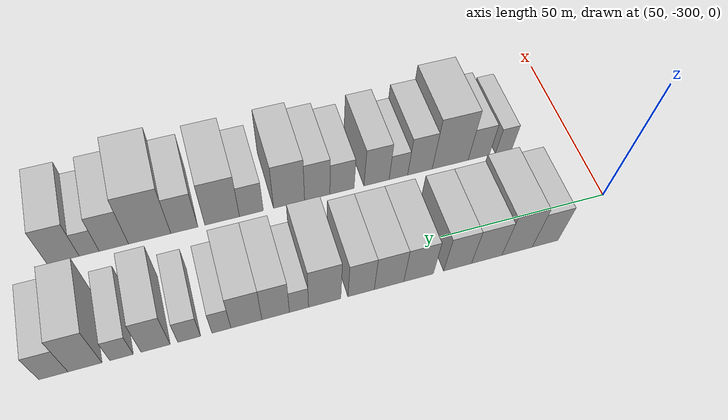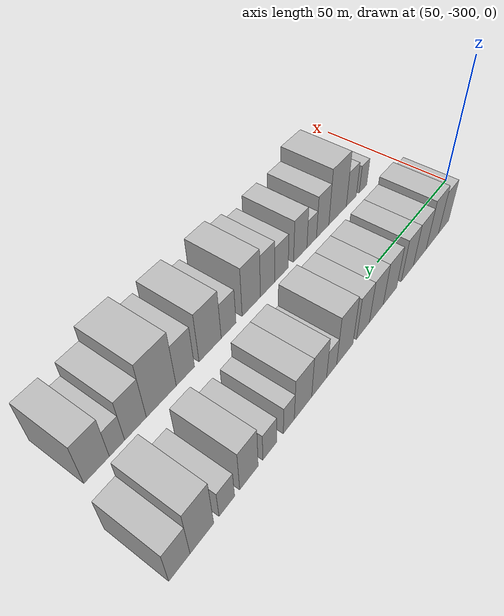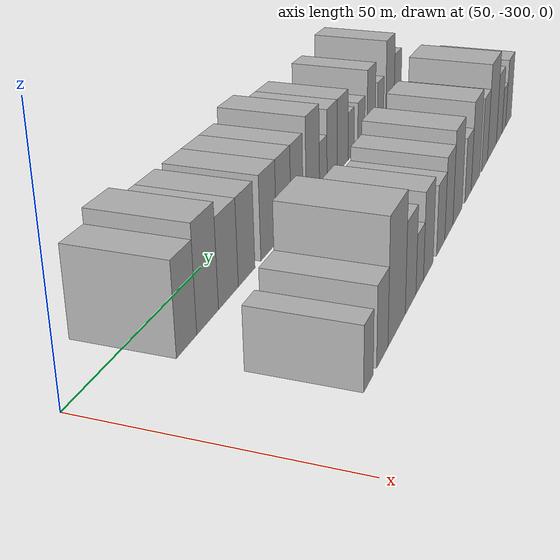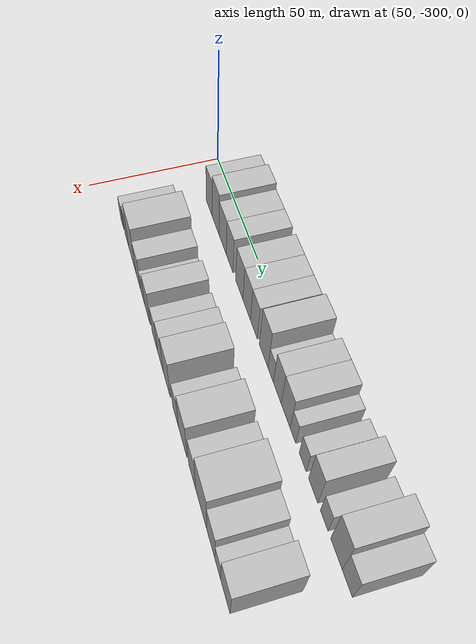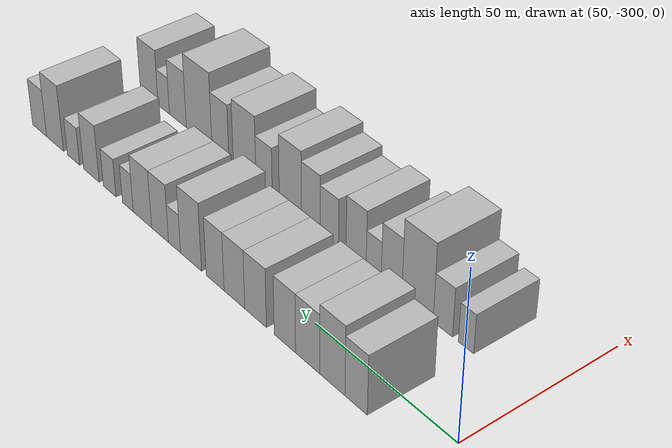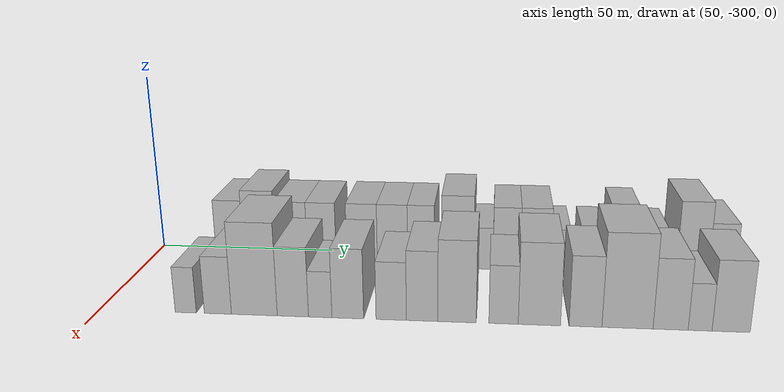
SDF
<sdf version="1.6">
 <world name="default">
  <model name="building_1">
   <static>1</static>
   <pose>50.0000 -277.0836 0 0.000000 0.000000 0.000000</pose>
   <link name="link">
    <pose>0 0 9.00 0 0 0</pose>
    <collision name="collision"><geometry><box><size>20.0000 7.8328 18.0000</size></box></geometry></collision>
    <visual name="visual">
     <cast_shadows>0</cast_shadows>
     <geometry><box><size>20.0000 7.8328 18.0000</size></box></geometry>
     <material>
      <script>
       <uri>model://HANNAS_wall/materials/scripts</uri>
       <uri>model://HANNAS_wall/materials/textures</uri>
       <name>vrc/HANNAS_wall</name>
      </script>
     </material>
    </visual>
   </link>
  </model>
  <model name="building_2">
   <static>1</static>
   <pose>50.0000 -268.6406 0 0.000000 0.000000 0.000000</pose>
   <link name="link">
    <pose>0 0 10.50 0 0 0</pose>
    <collision name="collision"><geometry><box><size>20.0000 9.0533 21.0000</size></box></geometry></collision>
    <visual name="visual">
     <cast_shadows>0</cast_shadows>
     <geometry><box><size>20.0000 9.0533 21.0000</size></box></geometry>
     <material>
      <script>
       <uri>model://HANNAS_wall/materials/scripts</uri>
       <uri>model://HANNAS_wall/materials/textures</uri>
       <name>vrc/HANNAS_wall</name>
      </script>
     </material>
    </visual>
   </link>
  </model>
  <model name="building_3">
   <static>1</static>
   <pose>50.0000 -259.6193 0 0.000000 0.000000 0.000000</pose>
   <link name="link">
    <pose>0 0 9.00 0 0 0</pose>
    <collision name="collision"><geometry><box><size>20.0000 8.9893 18.0000</size></box></geometry></collision>
    <visual name="visual">
     <cast_shadows>0</cast_shadows>
     <geometry><box><size>20.0000 8.9893 18.0000</size></box></geometry>
     <material>
      <script>
       <uri>model://HANNAS_wall/materials/scripts</uri>
       <uri>model://HANNAS_wall/materials/textures</uri>
       <name>vrc/HANNAS_wall</name>
      </script>
     </material>
    </visual>
   </link>
  </model>
  <model name="building_4">
   <static>1</static>
   <pose>50.0000 -251.0663 0 0.000000 0.000000 0.000000</pose>
   <link name="link">
    <pose>0 0 9.00 0 0 0</pose>
    <collision name="collision"><geometry><box><size>20.0000 8.1167 18.0000</size></box></geometry></collision>
    <visual name="visual">
     <cast_shadows>0</cast_shadows>
     <geometry><box><size>20.0000 8.1167 18.0000</size></box></geometry>
     <material>
      <script>
       <uri>model://HANNAS_wall/materials/scripts</uri>
       <uri>model://HANNAS_wall/materials/textures</uri>
       <name>vrc/HANNAS_wall</name>
      </script>
     </material>
    </visual>
   </link>
  </model>
  <model name="building_5">
   <static>1</static>
   <pose>50.0000 -239.7565 0 0.000000 0.000000 0.000000</pose>
   <link name="link">
    <pose>0 0 9.00 0 0 0</pose>
    <collision name="collision"><geometry><box><size>20.0000 8.5028 18.0000</size></box></geometry></collision>
    <visual name="visual">
     <cast_shadows>0</cast_shadows>
     <geometry><box><size>20.0000 8.5028 18.0000</size></box></geometry>
     <material>
      <script>
       <uri>model://HANNAS_wall/materials/scripts</uri>
       <uri>model://HANNAS_wall/materials/textures</uri>
       <name>vrc/HANNAS_wall</name>
      </script>
     </material>
    </visual>
   </link>
  </model>
  <model name="building_6">
   <static>1</static>
   <pose>50.0000 -231.3192 0 0.000000 0.000000 0.000000</pose>
   <link name="link">
    <pose>0 0 9.00 0 0 0</pose>
    <collision name="collision"><geometry><box><size>20.0000 8.3718 18.0000</size></box></geometry></collision>
    <visual name="visual">
     <cast_shadows>0</cast_shadows>
     <geometry><box><size>20.0000 8.3718 18.0000</size></box></geometry>
     <material>
      <script>
       <uri>model://HANNAS_wall/materials/scripts</uri>
       <uri>model://HANNAS_wall/materials/textures</uri>
       <name>vrc/HANNAS_wall</name>
      </script>
     </material>
    </visual>
   </link>
  </model>
  <model name="building_7">
   <static>1</static>
   <pose>50.0000 -223.4350 0 0.000000 0.000000 0.000000</pose>
   <link name="link">
    <pose>0 0 9.00 0 0 0</pose>
    <collision name="collision"><geometry><box><size>20.0000 7.3966 18.0000</size></box></geometry></collision>
    <visual name="visual">
     <cast_shadows>0</cast_shadows>
     <geometry><box><size>20.0000 7.3966 18.0000</size></box></geometry>
     <material>
      <script>
       <uri>model://HANNAS_wall/materials/scripts</uri>
       <uri>model://HANNAS_wall/materials/textures</uri>
       <name>vrc/HANNAS_wall</name>
      </script>
     </material>
    </visual>
   </link>
  </model>
  <model name="building_8">
   <static>1</static>
   <pose>50.0000 -213.2876 0 0.000000 0.000000 0.000000</pose>
   <link name="link">
    <pose>0 0 10.50 0 0 0</pose>
    <collision name="collision"><geometry><box><size>20.0000 8.8982 21.0000</size></box></geometry></collision>
    <visual name="visual">
     <cast_shadows>0</cast_shadows>
     <geometry><box><size>20.0000 8.8982 21.0000</size></box></geometry>
     <material>
      <script>
       <uri>model://HANNAS_wall/materials/scripts</uri>
       <uri>model://HANNAS_wall/materials/textures</uri>
       <name>vrc/HANNAS_wall</name>
      </script>
     </material>
    </visual>
   </link>
  </model>
  <model name="building_9">
   <static>1</static>
   <pose>50.0000 -206.2193 0 0.000000 0.000000 0.000000</pose>
   <link name="link">
    <pose>0 0 6.00 0 0 0</pose>
    <collision name="collision"><geometry><box><size>20.0000 5.2385 12.0000</size></box></geometry></collision>
    <visual name="visual">
     <cast_shadows>0</cast_shadows>
     <geometry><box><size>20.0000 5.2385 12.0000</size></box></geometry>
     <material>
      <script>
       <uri>model://HANNAS_wall/materials/scripts</uri>
       <uri>model://HANNAS_wall/materials/textures</uri>
       <name>vrc/HANNAS_wall</name>
      </script>
     </material>
    </visual>
   </link>
  </model>
  <model name="building_10">
   <static>1</static>
   <pose>50.0000 -199.8635 0 0.000000 0.000000 0.000000</pose>
   <link name="link">
    <pose>0 0 9.00 0 0 0</pose>
    <collision name="collision"><geometry><box><size>20.0000 7.4730 18.0000</size></box></geometry></collision>
    <visual name="visual">
     <cast_shadows>0</cast_shadows>
     <geometry><box><size>20.0000 7.4730 18.0000</size></box></geometry>
     <material>
      <script>
       <uri>model://HANNAS_wall/materials/scripts</uri>
       <uri>model://HANNAS_wall/materials/textures</uri>
       <name>vrc/HANNAS_wall</name>
      </script>
     </material>
    </visual>
   </link>
  </model>
  <model name="building_11">
   <static>1</static>
   <pose>50.0000 -191.9743 0 0.000000 0.000000 0.000000</pose>
   <link name="link">
    <pose>0 0 9.00 0 0 0</pose>
    <collision name="collision"><geometry><box><size>20.0000 8.3054 18.0000</size></box></geometry></collision>
    <visual name="visual">
     <cast_shadows>0</cast_shadows>
     <geometry><box><size>20.0000 8.3054 18.0000</size></box></geometry>
     <material>
      <script>
       <uri>model://HANNAS_wall/materials/scripts</uri>
       <uri>model://HANNAS_wall/materials/textures</uri>
       <name>vrc/HANNAS_wall</name>
      </script>
     </material>
    </visual>
   </link>
  </model>
  <model name="building_12">
   <static>1</static>
   <pose>50.0000 -185.3072 0 0.000000 0.000000 0.000000</pose>
   <link name="link">
    <pose>0 0 6.00 0 0 0</pose>
    <collision name="collision"><geometry><box><size>20.0000 5.0287 12.0000</size></box></geometry></collision>
    <visual name="visual">
     <cast_shadows>0</cast_shadows>
     <geometry><box><size>20.0000 5.0287 12.0000</size></box></geometry>
     <material>
      <script>
       <uri>model://HANNAS_wall/materials/scripts</uri>
       <uri>model://HANNAS_wall/materials/textures</uri>
       <name>vrc/HANNAS_wall</name>
      </script>
     </material>
    </visual>
   </link>
  </model>
  <model name="building_13">
   <static>1</static>
   <pose>50.0000 -176.8049 0 0.000000 0.000000 0.000000</pose>
   <link name="link">
    <pose>0 0 6.00 0 0 0</pose>
    <collision name="collision"><geometry><box><size>20.0000 5.9760 12.0000</size></box></geometry></collision>
    <visual name="visual">
     <cast_shadows>0</cast_shadows>
     <geometry><box><size>20.0000 5.9760 12.0000</size></box></geometry>
     <material>
      <script>
       <uri>model://HANNAS_wall/materials/scripts</uri>
       <uri>model://HANNAS_wall/materials/textures</uri>
       <name>vrc/HANNAS_wall</name>
      </script>
     </material>
    </visual>
   </link>
  </model>
  <model name="building_14">
   <static>1</static>
   <pose>50.0000 -168.0518 0 0.000000 0.000000 0.000000</pose>
   <link name="link">
    <pose>0 0 9.00 0 0 0</pose>
    <collision name="collision"><geometry><box><size>20.0000 7.5302 18.0000</size></box></geometry></collision>
    <visual name="visual">
     <cast_shadows>0</cast_shadows>
     <geometry><box><size>20.0000 7.5302 18.0000</size></box></geometry>
     <material>
      <script>
       <uri>model://HANNAS_wall/materials/scripts</uri>
       <uri>model://HANNAS_wall/materials/textures</uri>
       <name>vrc/HANNAS_wall</name>
      </script>
     </material>
    </visual>
   </link>
  </model>
  <model name="building_15">
   <static>1</static>
   <pose>50.0000 -159.2871 0 0.000000 0.000000 0.000000</pose>
   <link name="link">
    <pose>0 0 6.00 0 0 0</pose>
    <collision name="collision"><geometry><box><size>20.0000 5.9992 12.0000</size></box></geometry></collision>
    <visual name="visual">
     <cast_shadows>0</cast_shadows>
     <geometry><box><size>20.0000 5.9992 12.0000</size></box></geometry>
     <material>
      <script>
       <uri>model://HANNAS_wall/materials/scripts</uri>
       <uri>model://HANNAS_wall/materials/textures</uri>
       <name>vrc/HANNAS_wall</name>
      </script>
     </material>
    </visual>
   </link>
  </model>
  <model name="building_16">
   <static>1</static>
   <pose>50.0000 -150.0109 0 0.000000 0.000000 0.000000</pose>
   <link name="link">
    <pose>0 0 10.50 0 0 0</pose>
    <collision name="collision"><geometry><box><size>20.0000 8.5532 21.0000</size></box></geometry></collision>
    <visual name="visual">
     <cast_shadows>0</cast_shadows>
     <geometry><box><size>20.0000 8.5532 21.0000</size></box></geometry>
     <material>
      <script>
       <uri>model://HANNAS_wall/materials/scripts</uri>
       <uri>model://HANNAS_wall/materials/textures</uri>
       <name>vrc/HANNAS_wall</name>
      </script>
     </material>
    </visual>
   </link>
  </model>
  <model name="building_17">
   <static>1</static>
   <pose>50.0000 -142.0953 0 0.000000 0.000000 0.000000</pose>
   <link name="link">
    <pose>0 0 7.50 0 0 0</pose>
    <collision name="collision"><geometry><box><size>20.0000 7.2780 15.0000</size></box></geometry></collision>
    <visual name="visual">
     <cast_shadows>0</cast_shadows>
     <geometry><box><size>20.0000 7.2780 15.0000</size></box></geometry>
     <material>
      <script>
       <uri>model://HANNAS_wall/materials/scripts</uri>
       <uri>model://HANNAS_wall/materials/textures</uri>
       <name>vrc/HANNAS_wall</name>
      </script>
     </material>
    </visual>
   </link>
  </model>
  <model name="building_67">
   <static>1</static>
   <pose>82.0000 -278.3570 0 0.000000 0.000000 0.000000</pose>
   <link name="link">
    <pose>0 0 6.00 0 0 0</pose>
    <collision name="collision"><geometry><box><size>20.0000 5.2861 12.0000</size></box></geometry></collision>
    <visual name="visual">
     <cast_shadows>0</cast_shadows>
     <geometry><box><size>20.0000 5.2861 12.0000</size></box></geometry>
     <material>
      <script>
       <uri>model://HANNAS_wall/materials/scripts</uri>
       <uri>model://HANNAS_wall/materials/textures</uri>
       <name>vrc/HANNAS_wall</name>
      </script>
     </material>
    </visual>
   </link>
  </model>
  <model name="building_68">
   <static>1</static>
   <pose>82.0000 -270.3275 0 0.000000 0.000000 0.000000</pose>
   <link name="link">
    <pose>0 0 7.50 0 0 0</pose>
    <collision name="collision"><geometry><box><size>20.0000 6.7728 15.0000</size></box></geometry></collision>
    <visual name="visual">
     <cast_shadows>0</cast_shadows>
     <geometry><box><size>20.0000 6.7728 15.0000</size></box></geometry>
     <material>
      <script>
       <uri>model://HANNAS_wall/materials/scripts</uri>
       <uri>model://HANNAS_wall/materials/textures</uri>
       <name>vrc/HANNAS_wall</name>
      </script>
     </material>
    </visual>
   </link>
  </model>
  <model name="building_69">
   <static>1</static>
   <pose>82.0000 -261.2630 0 0.000000 0.000000 0.000000</pose>
   <link name="link">
    <pose>0 0 12.00 0 0 0</pose>
    <collision name="collision"><geometry><box><size>20.0000 11.3561 24.0000</size></box></geometry></collision>
    <visual name="visual">
     <cast_shadows>0</cast_shadows>
     <geometry><box><size>20.0000 11.3561 24.0000</size></box></geometry>
     <material>
      <script>
       <uri>model://HANNAS_wall/materials/scripts</uri>
       <uri>model://HANNAS_wall/materials/textures</uri>
       <name>vrc/HANNAS_wall</name>
      </script>
     </material>
    </visual>
   </link>
  </model>
  <model name="building_70">
   <static>1</static>
   <pose>82.0000 -251.7454 0 0.000000 0.000000 0.000000</pose>
   <link name="link">
    <pose>0 0 9.00 0 0 0</pose>
    <collision name="collision"><geometry><box><size>20.0000 7.6792 18.0000</size></box></geometry></collision>
    <visual name="visual">
     <cast_shadows>0</cast_shadows>
     <geometry><box><size>20.0000 7.6792 18.0000</size></box></geometry>
     <material>
      <script>
       <uri>model://HANNAS_wall/materials/scripts</uri>
       <uri>model://HANNAS_wall/materials/textures</uri>
       <name>vrc/HANNAS_wall</name>
      </script>
     </material>
    </visual>
   </link>
  </model>
  <model name="building_71">
   <static>1</static>
   <pose>82.0000 -245.0376 0 0.000000 0.000000 0.000000</pose>
   <link name="link">
    <pose>0 0 6.00 0 0 0</pose>
    <collision name="collision"><geometry><box><size>20.0000 5.7363 12.0000</size></box></geometry></collision>
    <visual name="visual">
     <cast_shadows>0</cast_shadows>
     <geometry><box><size>20.0000 5.7363 12.0000</size></box></geometry>
     <material>
      <script>
       <uri>model://HANNAS_wall/materials/scripts</uri>
       <uri>model://HANNAS_wall/materials/textures</uri>
       <name>vrc/HANNAS_wall</name>
      </script>
     </material>
    </visual>
   </link>
  </model>
  <model name="building_72">
   <static>1</static>
   <pose>82.0000 -238.3021 0 0.000000 0.000000 0.000000</pose>
   <link name="link">
    <pose>0 0 9.00 0 0 0</pose>
    <collision name="collision"><geometry><box><size>20.0000 7.7348 18.0000</size></box></geometry></collision>
    <visual name="visual">
     <cast_shadows>0</cast_shadows>
     <geometry><box><size>20.0000 7.7348 18.0000</size></box></geometry>
     <material>
      <script>
       <uri>model://HANNAS_wall/materials/scripts</uri>
       <uri>model://HANNAS_wall/materials/textures</uri>
       <name>vrc/HANNAS_wall</name>
      </script>
     </material>
    </visual>
   </link>
  </model>
  <model name="building_73">
   <static>1</static>
   <pose>82.0000 -227.7676 0 0.000000 0.000000 0.000000</pose>
   <link name="link">
    <pose>0 0 7.50 0 0 0</pose>
    <collision name="collision"><geometry><box><size>20.0000 7.3343 15.0000</size></box></geometry></collision>
    <visual name="visual">
     <cast_shadows>0</cast_shadows>
     <geometry><box><size>20.0000 7.3343 15.0000</size></box></geometry>
     <material>
      <script>
       <uri>model://HANNAS_wall/materials/scripts</uri>
       <uri>model://HANNAS_wall/materials/textures</uri>
       <name>vrc/HANNAS_wall</name>
      </script>
     </material>
    </visual>
   </link>
  </model>
  <model name="building_74">
   <static>1</static>
   <pose>82.0000 -220.3121 0 0.000000 0.000000 0.000000</pose>
   <link name="link">
    <pose>0 0 9.00 0 0 0</pose>
    <collision name="collision"><geometry><box><size>20.0000 7.5766 18.0000</size></box></geometry></collision>
    <visual name="visual">
     <cast_shadows>0</cast_shadows>
     <geometry><box><size>20.0000 7.5766 18.0000</size></box></geometry>
     <material>
      <script>
       <uri>model://HANNAS_wall/materials/scripts</uri>
       <uri>model://HANNAS_wall/materials/textures</uri>
       <name>vrc/HANNAS_wall</name>
      </script>
     </material>
    </visual>
   </link>
  </model>
  <model name="building_75">
   <static>1</static>
   <pose>82.0000 -211.9257 0 0.000000 0.000000 0.000000</pose>
   <link name="link">
    <pose>0 0 10.50 0 0 0</pose>
    <collision name="collision"><geometry><box><size>20.0000 9.1963 21.0000</size></box></geometry></collision>
    <visual name="visual">
     <cast_shadows>0</cast_shadows>
     <geometry><box><size>20.0000 9.1963 21.0000</size></box></geometry>
     <material>
      <script>
       <uri>model://HANNAS_wall/materials/scripts</uri>
       <uri>model://HANNAS_wall/materials/textures</uri>
       <name>vrc/HANNAS_wall</name>
      </script>
     </material>
    </visual>
   </link>
  </model>
  <model name="building_76">
   <static>1</static>
   <pose>82.0000 -200.8414 0 0.000000 0.000000 0.000000</pose>
   <link name="link">
    <pose>0 0 7.50 0 0 0</pose>
    <collision name="collision"><geometry><box><size>20.0000 6.9722 15.0000</size></box></geometry></collision>
    <visual name="visual">
     <cast_shadows>0</cast_shadows>
     <geometry><box><size>20.0000 6.9722 15.0000</size></box></geometry>
     <material>
      <script>
       <uri>model://HANNAS_wall/materials/scripts</uri>
       <uri>model://HANNAS_wall/materials/textures</uri>
       <name>vrc/HANNAS_wall</name>
      </script>
     </material>
    </visual>
   </link>
  </model>
  <model name="building_77">
   <static>1</static>
   <pose>82.0000 -192.3628 0 0.000000 0.000000 0.000000</pose>
   <link name="link">
    <pose>0 0 10.50 0 0 0</pose>
    <collision name="collision"><geometry><box><size>20.0000 9.9850 21.0000</size></box></geometry></collision>
    <visual name="visual">
     <cast_shadows>0</cast_shadows>
     <geometry><box><size>20.0000 9.9850 21.0000</size></box></geometry>
     <material>
      <script>
       <uri>model://HANNAS_wall/materials/scripts</uri>
       <uri>model://HANNAS_wall/materials/textures</uri>
       <name>vrc/HANNAS_wall</name>
      </script>
     </material>
    </visual>
   </link>
  </model>
  <model name="building_78">
   <static>1</static>
   <pose>82.0000 -181.5236 0 0.000000 0.000000 0.000000</pose>
   <link name="link">
    <pose>0 0 9.00 0 0 0</pose>
    <collision name="collision"><geometry><box><size>20.0000 7.6935 18.0000</size></box></geometry></collision>
    <visual name="visual">
     <cast_shadows>0</cast_shadows>
     <geometry><box><size>20.0000 7.6935 18.0000</size></box></geometry>
     <material>
      <script>
       <uri>model://HANNAS_wall/materials/scripts</uri>
       <uri>model://HANNAS_wall/materials/textures</uri>
       <name>vrc/HANNAS_wall</name>
      </script>
     </material>
    </visual>
   </link>
  </model>
  <model name="building_79">
   <static>1</static>
   <pose>82.0000 -171.7338 0 0.000000 0.000000 0.000000</pose>
   <link name="link">
    <pose>0 0 12.00 0 0 0</pose>
    <collision name="collision"><geometry><box><size>20.0000 11.8861 24.0000</size></box></geometry></collision>
    <visual name="visual">
     <cast_shadows>0</cast_shadows>
     <geometry><box><size>20.0000 11.8861 24.0000</size></box></geometry>
     <material>
      <script>
       <uri>model://HANNAS_wall/materials/scripts</uri>
       <uri>model://HANNAS_wall/materials/textures</uri>
       <name>vrc/HANNAS_wall</name>
      </script>
     </material>
    </visual>
   </link>
  </model>
  <model name="building_80">
   <static>1</static>
   <pose>82.0000 -161.7364 0 0.000000 0.000000 0.000000</pose>
   <link name="link">
    <pose>0 0 9.00 0 0 0</pose>
    <collision name="collision"><geometry><box><size>20.0000 8.1086 18.0000</size></box></geometry></collision>
    <visual name="visual">
     <cast_shadows>0</cast_shadows>
     <geometry><box><size>20.0000 8.1086 18.0000</size></box></geometry>
     <material>
      <script>
       <uri>model://HANNAS_wall/materials/scripts</uri>
       <uri>model://HANNAS_wall/materials/textures</uri>
       <name>vrc/HANNAS_wall</name>
      </script>
     </material>
    </visual>
   </link>
  </model>
  <model name="building_81">
   <static>1</static>
   <pose>82.0000 -154.9398 0 0.000000 0.000000 0.000000</pose>
   <link name="link">
    <pose>0 0 6.00 0 0 0</pose>
    <collision name="collision"><geometry><box><size>20.0000 5.4846 12.0000</size></box></geometry></collision>
    <visual name="visual">
     <cast_shadows>0</cast_shadows>
     <geometry><box><size>20.0000 5.4846 12.0000</size></box></geometry>
     <material>
      <script>
       <uri>model://HANNAS_wall/materials/scripts</uri>
       <uri>model://HANNAS_wall/materials/textures</uri>
       <name>vrc/HANNAS_wall</name>
      </script>
     </material>
    </visual>
   </link>
  </model>
  <model name="building_82">
   <static>1</static>
   <pose>82.0000 -147.8364 0 0.000000 0.000000 0.000000</pose>
   <link name="link">
    <pose>0 0 9.00 0 0 0</pose>
    <collision name="collision"><geometry><box><size>20.0000 8.7222 18.0000</size></box></geometry></collision>
    <visual name="visual">
     <cast_shadows>0</cast_shadows>
     <geometry><box><size>20.0000 8.7222 18.0000</size></box></geometry>
     <material>
      <script>
       <uri>model://HANNAS_wall/materials/scripts</uri>
       <uri>model://HANNAS_wall/materials/textures</uri>
       <name>vrc/HANNAS_wall</name>
      </script>
     </material>
    </visual>
   </link>
  </model>
 </world>
</sdf>
